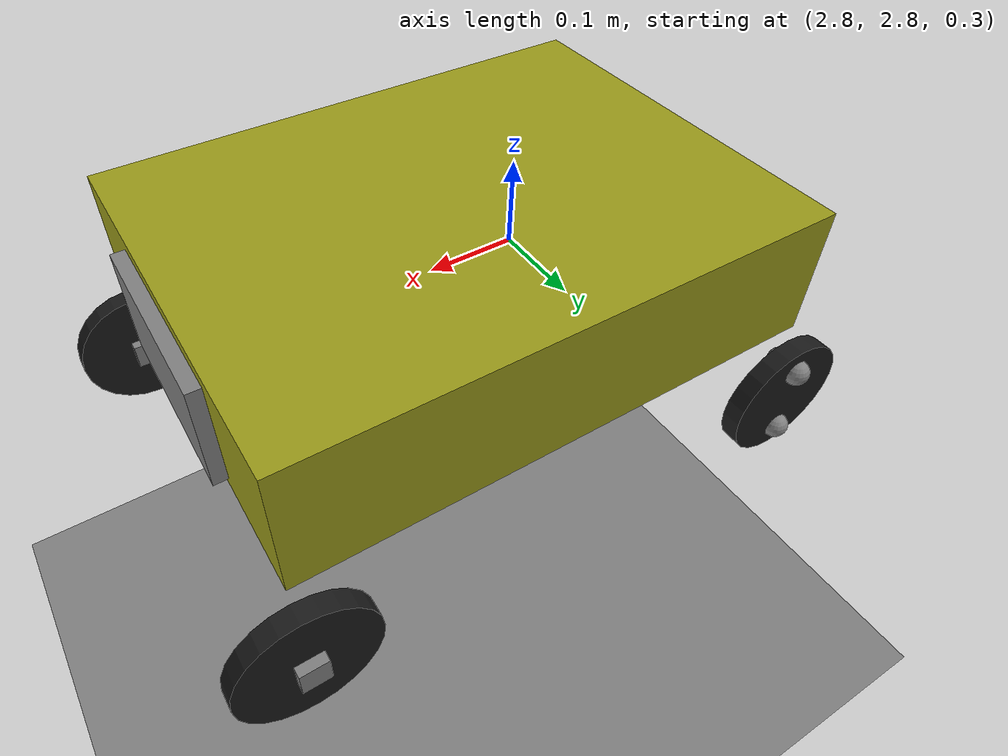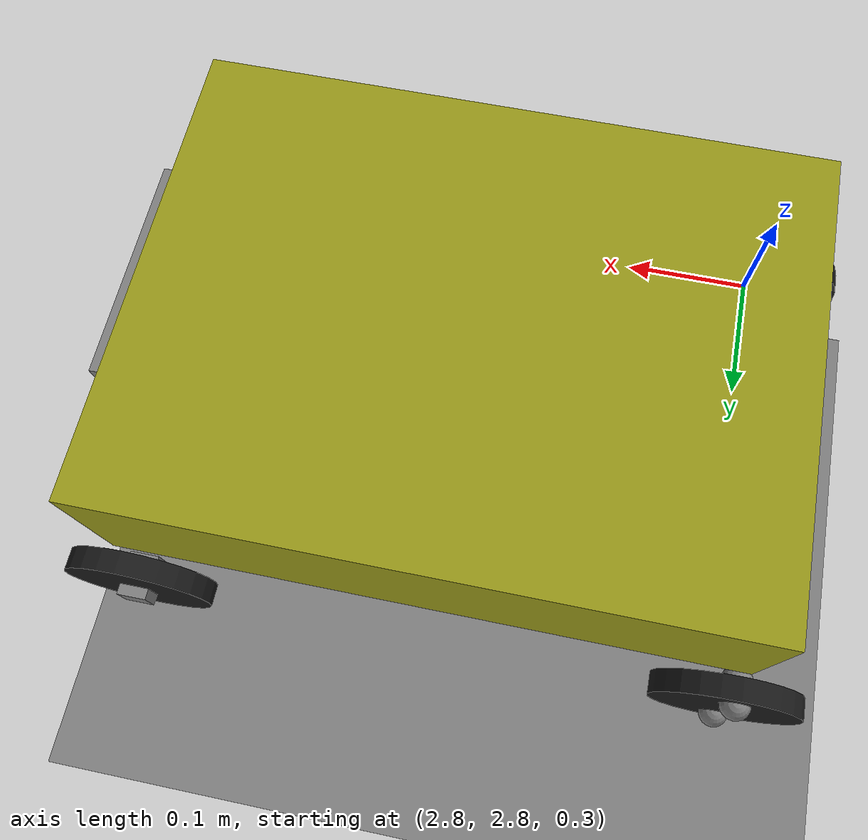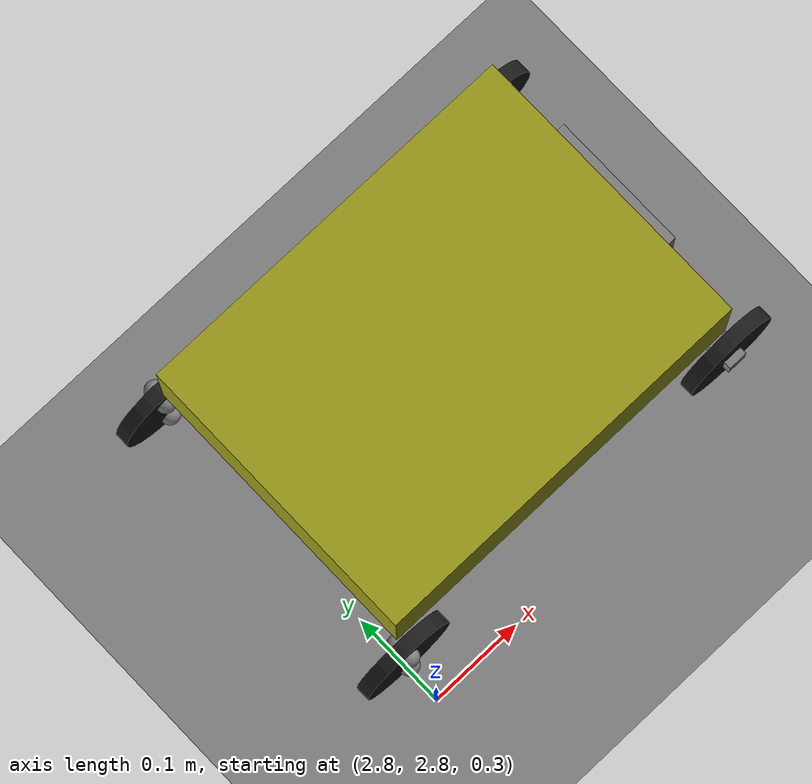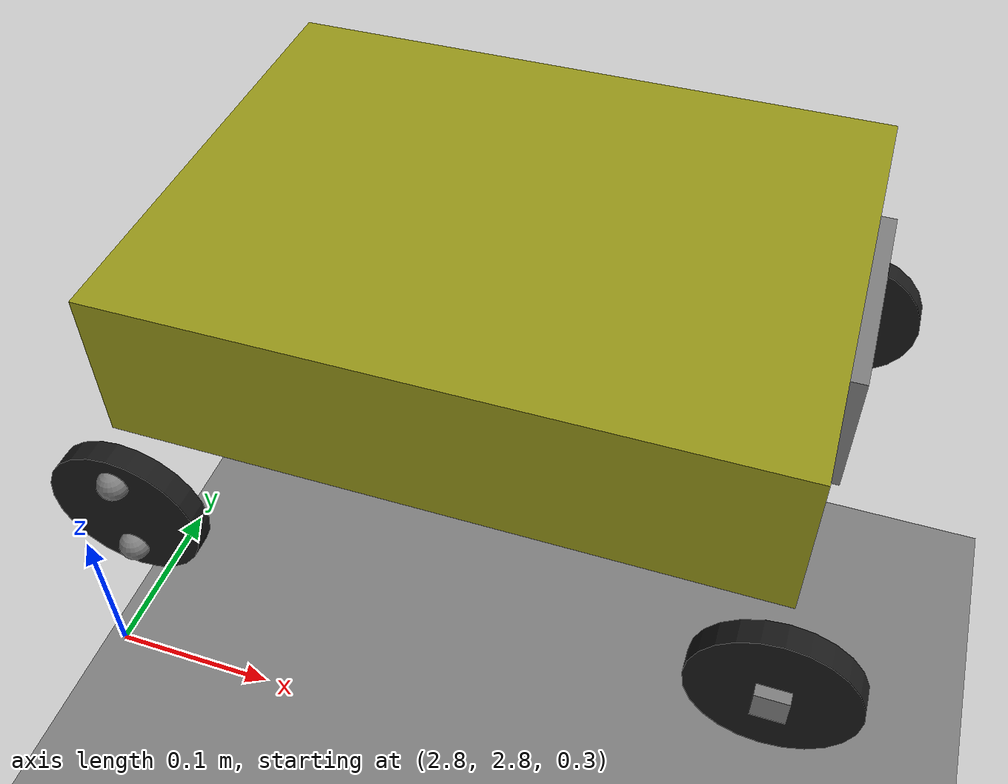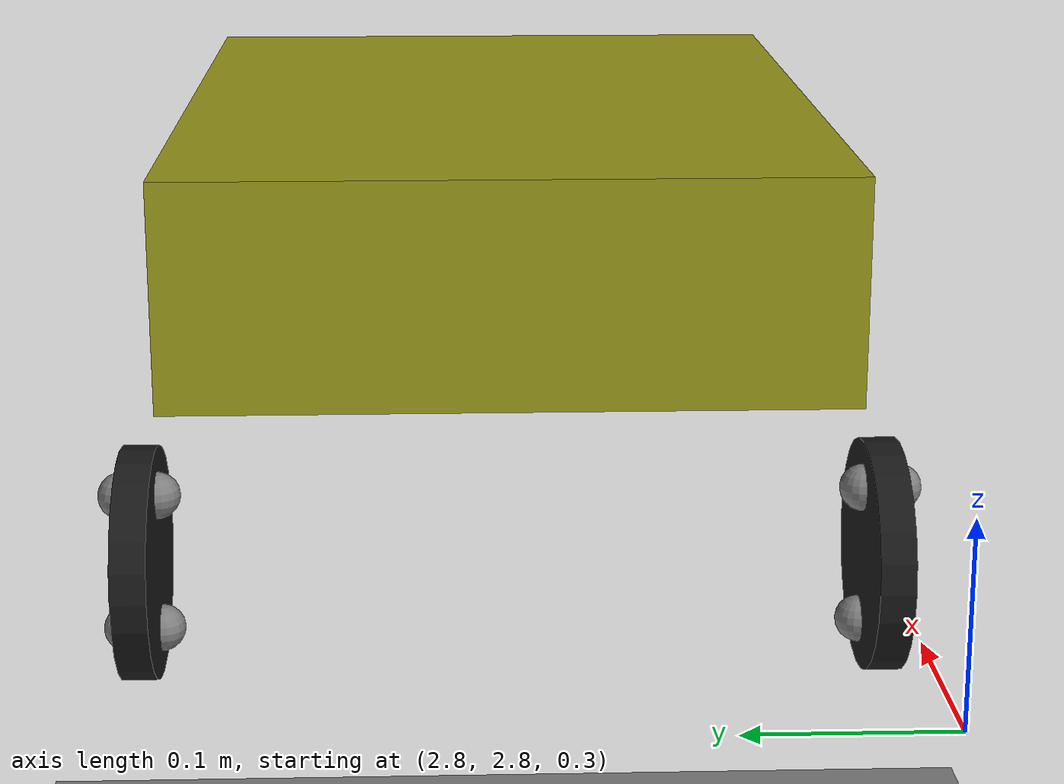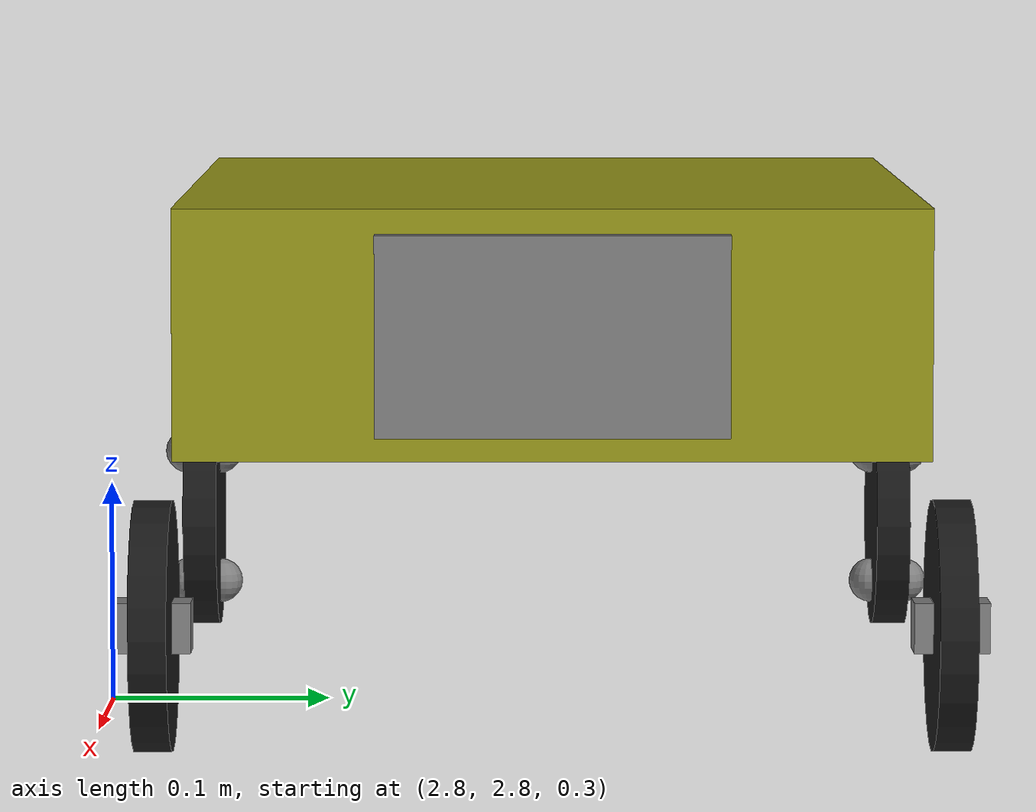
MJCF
<mujoco model="field (v0.1)">

	<include file="rover-4-wheels_loose.xml"/>
	<worldbody>
		<geom name="ground" type="plane" size="1 1 1" pos="3 3 0"/>
	</worldbody>
</mujoco>

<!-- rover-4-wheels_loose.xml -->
<mujoco model="rover (v0.2)">

    <compiler inertiafromgeom="true" angle="degree"/>
	<option	timestep="0.02" gravity="0 0 -9.81"/>

	<asset>
		<material name="MatWheel" specular="1" rgba=".1 .1 .1 1"/>
		<material name="MatBody" specular="1" rgba=".6 .6 .1 1"/>
	</asset>

	<default>
		<geom contype="1" conaffinity="1"/>
	</default>

	<visual>
		<headlight active="1"/>
		<scale camera=".5"/>
		<map znear="0.001" zfar="1000"/>
	</visual>

    <worldbody>
		<body name="rover" pos="3 3 .5">
			<light directional="true" cutoff="4" exponent="1" diffuse="1 1 1" specular="0 0 0" pos="0 .3 2.5" dir="0 -.3 -2.5 "/>
			<camera name="first-person" mode="fixed" pos=".22 0 .08" euler="180 -133 -90" fovy="90"/>
        	<joint name="centroid" type="free" pos="0 0 0"/>
            <geom name="rover-body" type="box" pos="0 0 0" size="0.2 0.15 .05" mass="12" material="MatBody"/>
			<site type="box" size=".01 .07 .04" pos=".2 0 0"/>
            <body name="r-l-wheel" pos="-0.2 0.15 -0.115">
				<joint name="r-l-steer-hinge" type="hinge" pos="0 0 0" axis="0 0 1" limited="true" damping="0.01" range="-1 1"/>
                <joint name="r-l-drive-hinge" type="hinge" pos="0 0 0" axis="0 1 0" damping="0.01"/>
                <geom type="cylinder" size=".05" fromto="0 0 0 0 0.015 0" mass=".125" material="MatWheel" condim="4"/>
				<site size=".01" pos="0 .015 .03"/>
				<site size=".01" pos="0 .015 -.03"/>
				<site size=".01" pos="0 0 .03"/>
				<site size=".01" pos="0 0 -.03"/>
            </body>
            <body name="r-r-wheel" pos="-0.2 -0.15 -0.115">
				<joint name="r-r-steer-hinge" type="hinge" pos="0 0 0" axis="0 0 1" limited="true" damping="0.01" range="-1 1"/>
                <joint name="r-r-drive-hinge" type="hinge" pos="0 0 0" axis="0 1 0" damping="0.01"/>
                <geom type="cylinder" size=".05" fromto="0 0 0 0 -0.015 0" mass=".125" material="MatWheel" condim="4"/>
				<site size=".01" pos="0 -.015 .03"/>
				<site size=".01" pos="0 -.015 -.03"/>
				<site size=".01" pos="0 0 .03"/>
				<site size=".01" pos="0 0 -.03"/>
            </body>
			<body name="steer-l-wheel" pos=".2 0.15 -.115">
				<joint name="f-l-drive-hinge" type="hinge" pos="0.03 0 0" axis="0 0 1" damping="0.01"/>
                <joint name="steer-l-hinge" type="hinge" pos="0 0 0" axis="0 1 0" damping="0.01"/>
				<geom type="cylinder" size=".05" fromto="0 0 0 0 0.015 0" mass=".125" material="MatWheel" condim="4"/>
				<site type="box" size=".01 .015 .01" pos="0 0.0075 0"/>
            </body>
			<body name="steer-r-wheel" pos=".2 -0.15 -.115">
				<joint name="f-r-drive-hinge" type="hinge" pos="0.03 0 0" axis="0 0 1" damping="0.01"/>
                <joint name="steer-r-hinge" type="hinge" pos="0 0 0" axis="0 1 0" damping="0.01"/>
				<geom type="cylinder" size=".05" fromto="0 -0.015 0 0 0 0" mass=".125" material="MatWheel" condim="4"/>
				<site type="box" size=".01 .015 .01" pos="0 -0.0075 0"/>
            </body>
		</body>
    </worldbody>

    <actuator>
        <motor name="r-l-wheel" joint="r-l-drive-hinge" ctrllimited="true" ctrlrange="-1.0 1.0" gear="0.75"/>
        <motor name="r-r-wheel" joint="r-r-drive-hinge" ctrllimited="true" ctrlrange="-1.0 1.0" gear="0.75"/>
    </actuator>

	<equality>
		<!--joint name="r-steer-bar" joint1="f-r-steer-hinge" joint2="rack-slide" polycoef="0 -1500 0 0 0"/-->
		<!--joint name="l-steer-bar" joint1="f-l-steer-hinge" joint2="rack-slide" polycoef="0 -1500 0 0 0"/-->
		<!--joint name="r-drive-wheels" joint1="r-r-drive-hinge" joint2="drive-hinge" polycoef="0 1 0 0 0"/-->
		<!--joint name="l-drive-wheels" joint1="r-l-drive-hinge" joint2="drive-hinge" polycoef="0 1 0 0 0"/-->
	</equality>

</mujoco>
